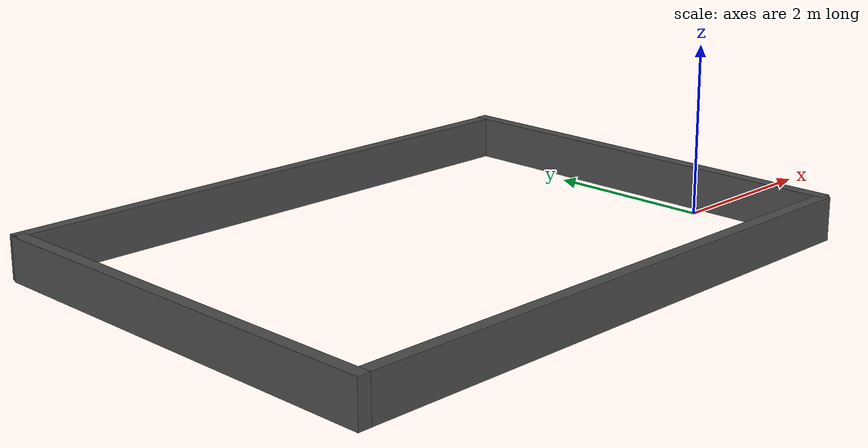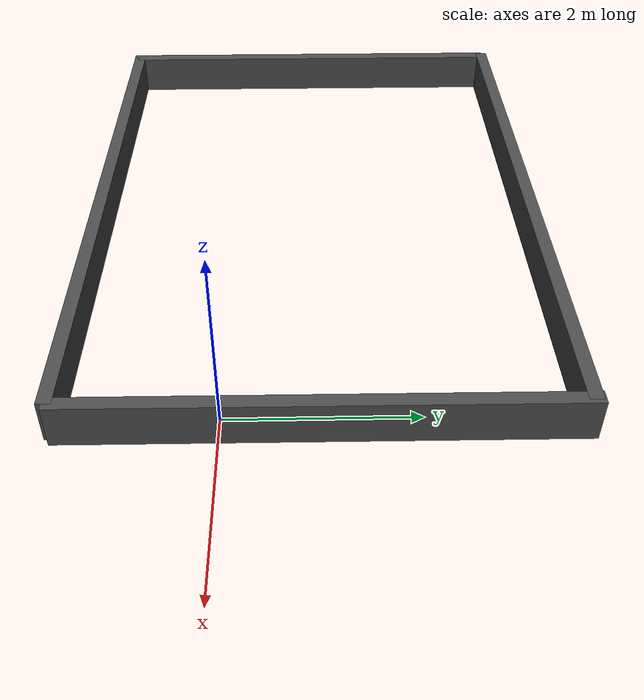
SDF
<?xml version='1.0'?>
<sdf version='1.7'>
  <model name='parede'>
    <link name='Wall_0'>
      <pose>-3.27591 -1.59026 0 0 -0 0</pose>
      <self_collide>1</self_collide>
      <enable_wind>0</enable_wind>
      <kinematic>1</kinematic>
      <inertial>
        <inertia>
          <ixx>0</ixx>
          <ixy>0</ixy>
          <ixz>0</ixz>
          <iyy>0</iyy>
          <iyz>0</iyz>
          <izz>0</izz>
        </inertia>
        <mass>100</mass>
        <pose>0 0 0 0 -0 0</pose>
      </inertial>
      <visual name='Wall_0_Visual'>
        <pose>0 0 0.25 0 -0 0</pose>
        <geometry>
          <box>
            <size>6.99936 0.15 0.5</size>
          </box>
        </geometry>
        <material>
          <script>
            <uri>file://media/materials/scripts/gazebo.material</uri>
            <name>Gazebo/DarkGrey</name>
          </script>
          <ambient>0.5 0.5 0.5 1</ambient>
          <shader type='pixel'/>
        </material>
        <meta>
          <layer>0</layer>
        </meta>
        <transparency>0</transparency>
        <cast_shadows>1</cast_shadows>
      </visual>
      <collision name='Wall_0_Collision'>
        <laser_retro>0</laser_retro>
        <max_contacts>10</max_contacts>
        <pose>0 0 0.25 0 -0 0</pose>
        <geometry>
          <box>
            <size>6.99936 0.15 0.5</size>
          </box>
        </geometry>
        <surface>
          <friction>
            <ode>
              <mu>10.0</mu>
              <mu2>10.0</mu2>
              <fdir1>0 0 0</fdir1>
              <slip1>0</slip1>
              <slip2>0</slip2>
            </ode>
            <torsional>
              <coefficient>1</coefficient>
              <patch_radius>0</patch_radius>
              <surface_radius>0</surface_radius>
              <use_patch_radius>1</use_patch_radius>
              <ode>
                <slip>0</slip>
              </ode>
            </torsional>
          </friction>
          <bounce>
            <restitution_coefficient>0.01</restitution_coefficient>
            <threshold>1e+06</threshold>
          </bounce>
          <contact>
            <collide_without_contact>0</collide_without_contact>
            <collide_without_contact_bitmask>1</collide_without_contact_bitmask>
            <collide_bitmask>1</collide_bitmask>
            <ode>
              <soft_cfm>0</soft_cfm>
              <soft_erp>0.2</soft_erp>
              <kp>1e+13</kp>
              <kd>1</kd>
              <max_vel>0.01</max_vel>
              <min_depth>0</min_depth>
            </ode>
            <bullet>
              <split_impulse>1</split_impulse>
              <split_impulse_penetration_threshold>-0.01</split_impulse_penetration_threshold>
              <soft_cfm>0</soft_cfm>
              <soft_erp>0.2</soft_erp>
              <kp>1e+13</kp>
              <kd>1</kd>
            </bullet>
          </contact>
        </surface>
      </collision>
    </link>
    <link name='Wall_1'>
      <pose>-3.29036 3.55533 -0 0 -0 3.14</pose>
      <self_collide>0</self_collide>
      <enable_wind>0</enable_wind>
      <kinematic>0</kinematic>
      <inertial>
        <inertia>
          <ixx>0</ixx>
          <ixy>0</ixy>
          <ixz>0</ixz>
          <iyy>0</iyy>
          <iyz>0</iyz>
          <izz>0</izz>
        </inertia>
        <mass>0</mass>
        <pose>0 0 0 0 -0 0</pose>
      </inertial>
      <visual name='Wall_1_Visual'>
        <pose>0 0 0.25 0 -0 0</pose>
        <geometry>
          <box>
            <size>7.07255 0.15 0.5</size>
          </box>
        </geometry>
        <material>
          <script>
            <uri>file://media/materials/scripts/gazebo.material</uri>
            <name>Gazebo/DarkGrey</name>
          </script>
          <ambient>0.5 0.5 0.5 1</ambient>
          <shader type='pixel'/>
        </material>
        <meta>
          <layer>0</layer>
        </meta>
        <transparency>0</transparency>
        <cast_shadows>1</cast_shadows>
      </visual>
      <collision name='Wall_1_Collision'>
        <laser_retro>0</laser_retro>
        <max_contacts>10</max_contacts>
        <pose>0 0 0.25 0 -0 0</pose>
        <geometry>
          <box>
            <size>7.07255 0.15 0.5</size>
          </box>
        </geometry>
        <surface>
          <friction>
            <ode>
              <mu>1</mu>
              <mu2>1</mu2>
              <fdir1>0 0 0</fdir1>
              <slip1>0</slip1>
              <slip2>0</slip2>
            </ode>
            <torsional>
              <coefficient>1</coefficient>
              <patch_radius>0</patch_radius>
              <surface_radius>0</surface_radius>
              <use_patch_radius>1</use_patch_radius>
              <ode>
                <slip>0</slip>
              </ode>
            </torsional>
          </friction>
          <bounce>
            <restitution_coefficient>0</restitution_coefficient>
            <threshold>1e+06</threshold>
          </bounce>
          <contact>
            <collide_without_contact>0</collide_without_contact>
            <collide_without_contact_bitmask>1</collide_without_contact_bitmask>
            <collide_bitmask>1</collide_bitmask>
            <ode>
              <soft_cfm>0</soft_cfm>
              <soft_erp>0.2</soft_erp>
              <kp>1e+13</kp>
              <kd>1</kd>
              <max_vel>0.01</max_vel>
              <min_depth>0</min_depth>
            </ode>
            <bullet>
              <split_impulse>1</split_impulse>
              <split_impulse_penetration_threshold>-0.01</split_impulse_penetration_threshold>
              <soft_cfm>0</soft_cfm>
              <soft_erp>0.2</soft_erp>
              <kp>1e+13</kp>
              <kd>1</kd>
            </bullet>
          </contact>
        </surface>
      </collision>
    </link>
    <link name='Wall_2'>
      <pose>0.217983 1.01368 0 0 -0 1.57</pose>
      <self_collide>0</self_collide>
      <enable_wind>0</enable_wind>
      <kinematic>0</kinematic>
      <inertial>
        <inertia>
          <ixx>0</ixx>
          <ixy>0</ixy>
          <ixz>0</ixz>
          <iyy>0</iyy>
          <iyz>0</iyz>
          <izz>0</izz>
        </inertia>
        <mass>0</mass>
        <pose>0 0 0 0 -0 0</pose>
      </inertial>
      <visual name='Wall_2_Visual'>
        <pose>0 0 0.25 0 -0 0</pose>
        <geometry>
          <box>
            <size>5.24889 0.15 0.5</size>
          </box>
        </geometry>
        <material>
          <script>
            <uri>file://media/materials/scripts/gazebo.material</uri>
            <name>Gazebo/DarkGrey</name>
          </script>
          <ambient>0.5 0.5 0.5 1</ambient>
          <shader type='pixel'/>
        </material>
        <meta>
          <layer>0</layer>
        </meta>
        <transparency>0</transparency>
        <cast_shadows>1</cast_shadows>
      </visual>
      <collision name='Wall_2_Collision'>
        <laser_retro>0</laser_retro>
        <max_contacts>10</max_contacts>
        <pose>0 0 0.25 0 -0 0</pose>
        <geometry>
          <box>
            <size>5.24889 0.15 0.5</size>
          </box>
        </geometry>
        <surface>
          <friction>
            <ode>
              <mu>1</mu>
              <mu2>1</mu2>
              <fdir1>0 0 0</fdir1>
              <slip1>0</slip1>
              <slip2>0</slip2>
            </ode>
            <torsional>
              <coefficient>1</coefficient>
              <patch_radius>0</patch_radius>
              <surface_radius>0</surface_radius>
              <use_patch_radius>1</use_patch_radius>
              <ode>
                <slip>0</slip>
              </ode>
            </torsional>
          </friction>
          <bounce>
            <restitution_coefficient>0</restitution_coefficient>
            <threshold>1e+06</threshold>
          </bounce>
          <contact>
            <collide_without_contact>0</collide_without_contact>
            <collide_without_contact_bitmask>1</collide_without_contact_bitmask>
            <collide_bitmask>1</collide_bitmask>
            <ode>
              <soft_cfm>0</soft_cfm>
              <soft_erp>0.2</soft_erp>
              <kp>1e+13</kp>
              <kd>1</kd>
              <max_vel>0.01</max_vel>
              <min_depth>0</min_depth>
            </ode>
            <bullet>
              <split_impulse>1</split_impulse>
              <split_impulse_penetration_threshold>-0.01</split_impulse_penetration_threshold>
              <soft_cfm>0</soft_cfm>
              <soft_erp>0.2</soft_erp>
              <kp>1e+13</kp>
              <kd>1</kd>
            </bullet>
          </contact>
        </surface>
      </collision>
    </link>
    <link name='Wall_3'>
      <pose>-6.77123 0.95009 0 0 0 -1.57</pose>
      <self_collide>0</self_collide>
      <enable_wind>0</enable_wind>
      <kinematic>0</kinematic>
      <inertial>
        <inertia>
          <ixx>0</ixx>
          <ixy>0</ixy>
          <ixz>0</ixz>
          <iyy>0</iyy>
          <iyz>0</iyz>
          <izz>0</izz>
        </inertia>
        <mass>0</mass>
        <pose>0 0 0 0 -0 0</pose>
      </inertial>
      <visual name='Wall_3_Visual'>
        <pose>0 0 0.25 0 -0 0</pose>
        <geometry>
          <box>
            <size>5.23446 0.15 0.5</size>
          </box>
        </geometry>
        <material>
          <script>
            <uri>file://media/materials/scripts/gazebo.material</uri>
            <name>Gazebo/DarkGrey</name>
          </script>
          <ambient>0.5 0.5 0.5 1</ambient>
          <shader type='pixel'/>
        </material>
        <meta>
          <layer>0</layer>
        </meta>
        <transparency>0</transparency>
        <cast_shadows>1</cast_shadows>
      </visual>
      <collision name='Wall_3_Collision'>
        <laser_retro>0</laser_retro>
        <max_contacts>10</max_contacts>
        <pose>0 0 0.25 0 -0 0</pose>
        <geometry>
          <box>
            <size>5.23446 0.15 0.5</size>
          </box>
        </geometry>
        <surface>
          <friction>
            <ode>
              <mu>1</mu>
              <mu2>1</mu2>
              <fdir1>0 0 0</fdir1>
              <slip1>0</slip1>
              <slip2>0</slip2>
            </ode>
            <torsional>
              <coefficient>1</coefficient>
              <patch_radius>0</patch_radius>
              <surface_radius>0</surface_radius>
              <use_patch_radius>1</use_patch_radius>
              <ode>
                <slip>0</slip>
              </ode>
            </torsional>
          </friction>
          <bounce>
            <restitution_coefficient>0</restitution_coefficient>
            <threshold>1e+06</threshold>
          </bounce>
          <contact>
            <collide_without_contact>0</collide_without_contact>
            <collide_without_contact_bitmask>1</collide_without_contact_bitmask>
            <collide_bitmask>1</collide_bitmask>
            <ode>
              <soft_cfm>0</soft_cfm>
              <soft_erp>0.2</soft_erp>
              <kp>1e+13</kp>
              <kd>1</kd>
              <max_vel>0.01</max_vel>
              <min_depth>0</min_depth>
            </ode>
            <bullet>
              <split_impulse>1</split_impulse>
              <split_impulse_penetration_threshold>-0.01</split_impulse_penetration_threshold>
              <soft_cfm>0</soft_cfm>
              <soft_erp>0.2</soft_erp>
              <kp>1e+13</kp>
              <kd>1</kd>
            </bullet>
          </contact>
        </surface>
      </collision>
    </link>
    <static>1</static>
    <allow_auto_disable>1</allow_auto_disable>
  </model>
</sdf>
